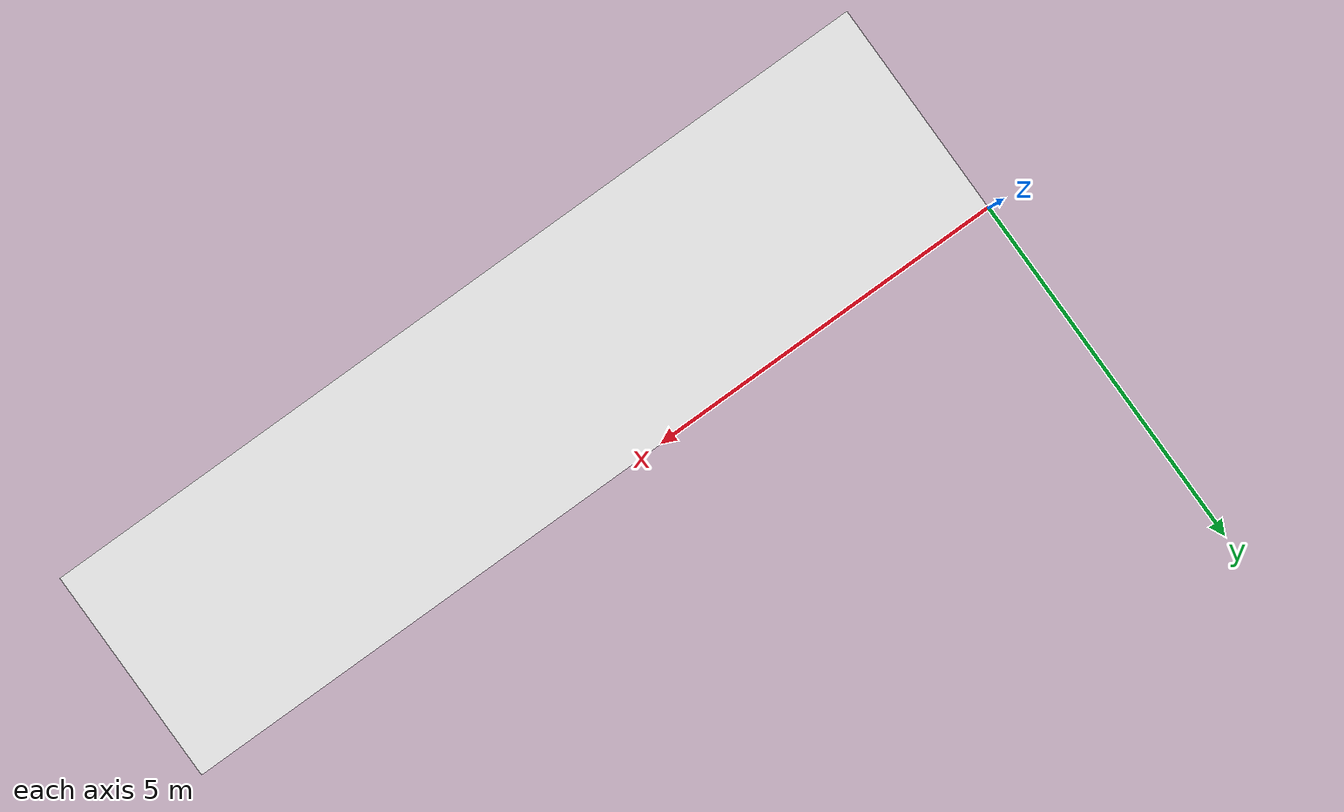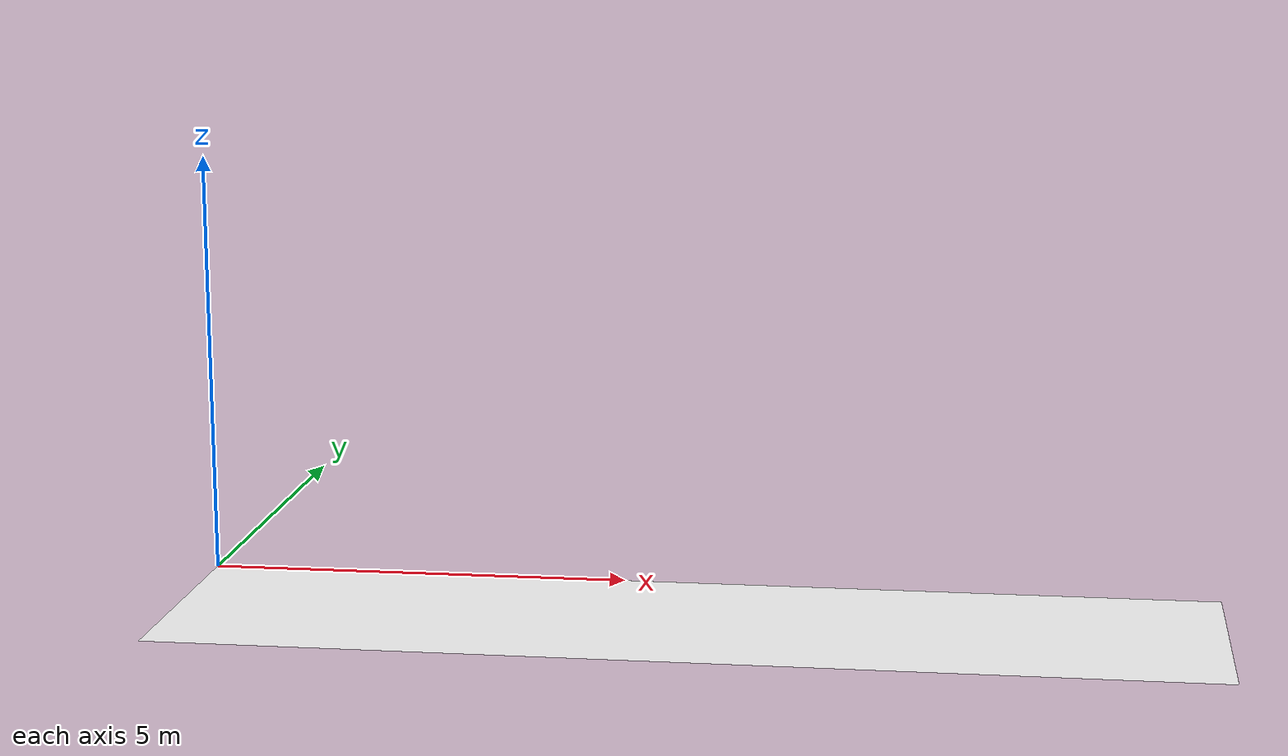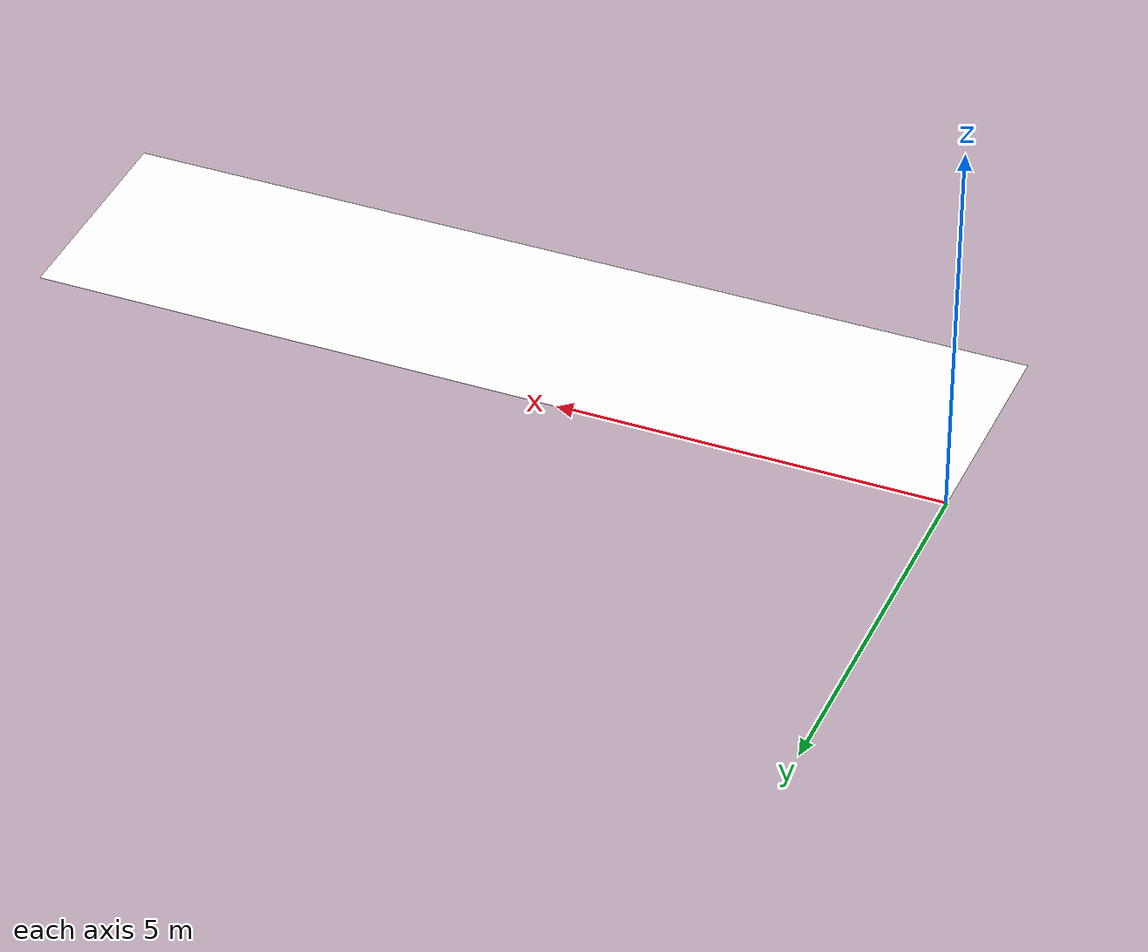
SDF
<?xml version="1.0" encoding="UTF-8"?>
<sdf version="1.9">
  <model name="charuco_strip">
    <static>true</static>
    <link name="link">
      <visual name="print">
        <cast_shadows>false</cast_shadows>
        <geometry><mesh><uri>model://charuco_strip/meshes/charuco_strip.obj</uri></mesh></geometry>
        <material>
          <double_sided>true</double_sided>
          <diffuse>1 1 1 1</diffuse><specular>0.05 0.05 0.05 1</specular>
          <pbr><metal>
            <albedo_map>model://charuco_strip/materials/textures/charuco_strip.png</albedo_map>
            <roughness>0.9</roughness><metalness>0</metalness>
          </metal></pbr>
        </material>
      </visual>
    </link>
  </model>
</sdf>
